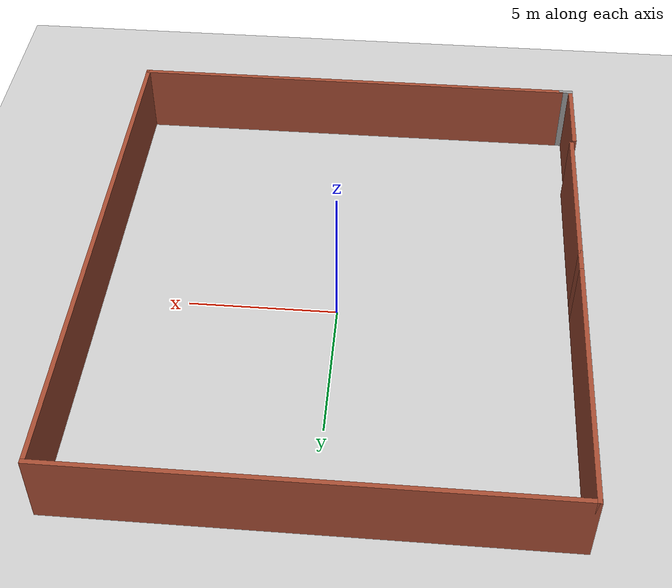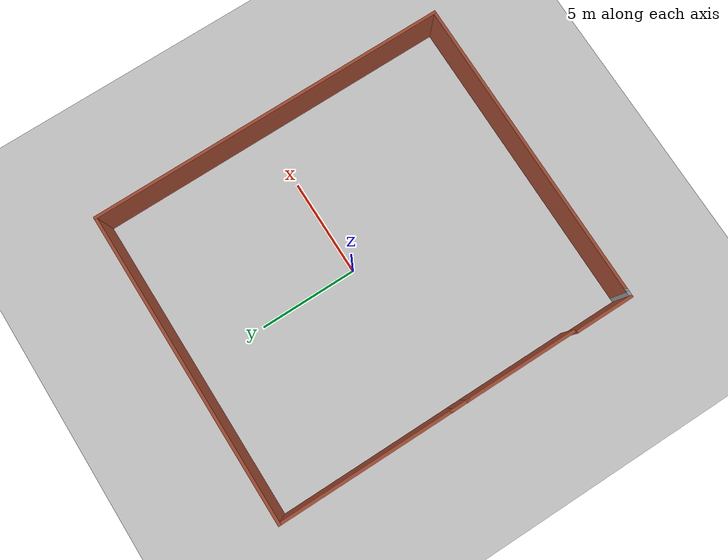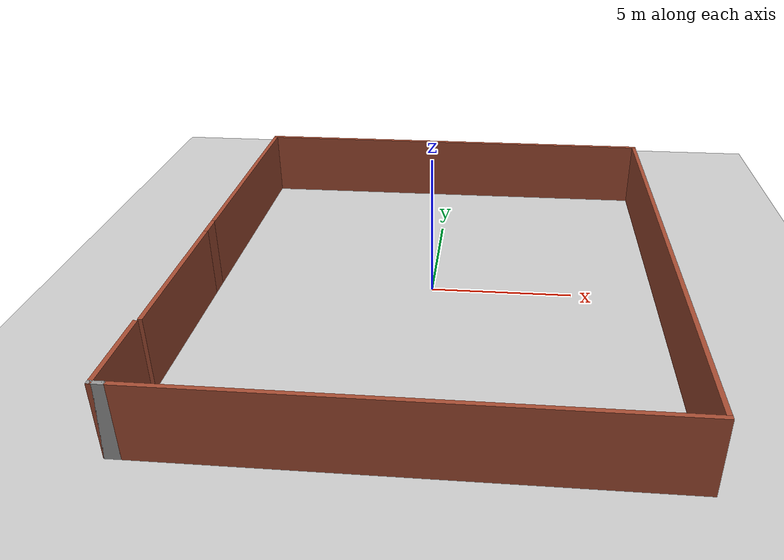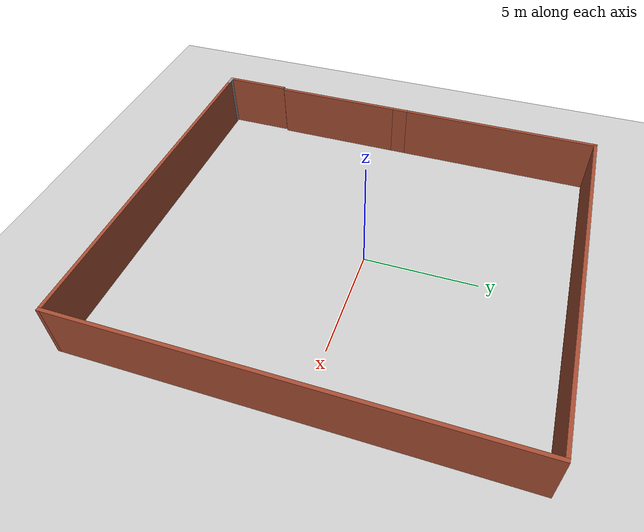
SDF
<sdf version="1.7">
 <world name="default">
  <light name="sun" type="directional">
   <pose>0 0 10 0 -0 0</pose>
   <diffuse>0.8 0.8 0.8 1</diffuse>
   <specular>0.2 0.2 0.2 1</specular>
   <attenuation>
    <range>1000</range>
    <constant>0.9</constant>
    <linear>0.01</linear>
    <quadratic>0.001</quadratic>
   </attenuation>
   <direction>-0.5 0.1 -0.9</direction>
   <spot><inner_angle>0</inner_angle><outer_angle>0</outer_angle><falloff>0</falloff></spot>
  </light>
  <model name="ground_plane">
   <static>1</static>
   <link name="link">
    <collision name="collision">
     <geometry><plane><normal>0 0 1</normal><size>100 100</size></plane></geometry>
     <surface>
      <contact><collide_bitmask>65535</collide_bitmask></contact>
      <friction><ode><mu>100</mu><mu2>50</mu2></ode></friction>
     </surface>
    </collision>
    <visual name="visual">
     <cast_shadows>0</cast_shadows>
     <geometry><plane><normal>0 0 1</normal><size>100 100</size></plane></geometry>
     <material>
      <script><uri>file://media/materials/scripts/gazebo.material</uri><name>Gazebo/Grey</name></script>
     </material>
    </visual>
   </link>
  </model>
  <gravity>0 0 -9.8</gravity>
  <magnetic_field>6e-06 2.3e-05 -4.2e-05</magnetic_field>
  <atmosphere type="adiabatic"/>
  <physics type="ode">
   <max_step_size>0.001</max_step_size>
   <real_time_factor>1</real_time_factor>
   <real_time_update_rate>1000</real_time_update_rate>
  </physics>
  <scene><ambient>0.4 0.4 0.4 1</ambient><background>0.7 0.7 0.7 1</background><shadows>1</shadows></scene>
  <spherical_coordinates>
   <surface_model>EARTH_WGS84</surface_model>
   <latitude_deg>0</latitude_deg>
   <longitude_deg>0</longitude_deg>
   <elevation>0</elevation>
   <heading_deg>0</heading_deg>
  </spherical_coordinates>
  <model name="world">
   <pose>0.040246 -0.489981 0 0 -0 0</pose>
   <link name="Wall_10">
    <collision name="Wall_10_Collision">
     <geometry><box><size>18.5 0.15 2.5</size></box></geometry>
     <pose>0 0 1.25 0 -0 0</pose>
    </collision>
    <visual name="Wall_10_Visual">
     <pose>0 0 1.25 0 -0 0</pose>
     <geometry><box><size>18.5 0.15 2.5</size></box></geometry>
     <material>
      <script><uri>file://media/materials/scripts/gazebo.material</uri><name>Gazebo/Bricks</name></script>
      <ambient>1 1 1 1</ambient>
     </material>
     <meta><layer>0</layer></meta>
    </visual>
    <pose>7.975 -0 0 0 -0 -1.5708</pose>
   </link>
   <link name="Wall_11">
    <collision name="Wall_11_Collision">
     <geometry><box><size>15.75 0.15 2.5</size></box></geometry>
     <pose>0 0 1.25 0 -0 0</pose>
    </collision>
    <visual name="Wall_11_Visual">
     <pose>0 0 1.25 0 -0 0</pose>
     <geometry><box><size>15.75 0.15 2.5</size></box></geometry>
     <material>
      <script><uri>file://media/materials/scripts/gazebo.material</uri><name>Gazebo/Bricks</name></script>
      <ambient>1 1 1 1</ambient>
     </material>
     <meta><layer>0</layer></meta>
    </visual>
    <pose>0.175 -9.175 0 0 -0 3.14159</pose>
   </link>
   <link name="Wall_12">
    <collision name="Wall_12_Collision">
     <geometry><box><size>0.15 0.15 2.5</size></box></geometry>
     <pose>0 0 1.25 0 -0 0</pose>
    </collision>
    <visual name="Wall_12_Visual">
     <pose>0 0 1.25 0 -0 0</pose>
     <geometry><box><size>0.15 0.15 2.5</size></box></geometry>
     <material>
      <script><uri>file://media/materials/scripts/gazebo.material</uri><name>Gazebo/Grey</name></script>
      <ambient>1 1 1 1</ambient>
     </material>
     <meta><layer>0</layer></meta>
    </visual>
    <pose>-7.625 -9.175 0 0 -0 0</pose>
   </link>
   <link name="Wall_13">
    <collision name="Wall_13_Collision">
     <geometry><box><size>0.15 0.15 2.5</size></box></geometry>
     <pose>0 0 1.25 0 -0 0</pose>
    </collision>
    <visual name="Wall_13_Visual">
     <pose>0 0 1.25 0 -0 0</pose>
     <geometry><box><size>0.15 0.15 2.5</size></box></geometry>
     <material>
      <script><uri>file://media/materials/scripts/gazebo.material</uri><name>Gazebo/Grey</name></script>
      <ambient>1 1 1 1</ambient>
     </material>
     <meta><layer>0</layer></meta>
    </visual>
    <pose>-7.625 -9.175 0 0 -0 0</pose>
   </link>
   <link name="Wall_14">
    <collision name="Wall_14_Collision">
     <geometry><box><size>0.5 0.15 2.5</size></box></geometry>
     <pose>0 0 1.25 0 -0 0</pose>
    </collision>
    <visual name="Wall_14_Visual">
     <pose>0 0 1.25 0 -0 0</pose>
     <geometry><box><size>0.5 0.15 2.5</size></box></geometry>
     <material>
      <script><uri>file://media/materials/scripts/gazebo.material</uri><name>Gazebo/Grey</name></script>
      <ambient>1 1 1 1</ambient>
     </material>
     <meta><layer>0</layer></meta>
    </visual>
    <pose>-7.8 -9.175 0 0 -0 3.14159</pose>
   </link>
   <link name="Wall_15">
    <collision name="Wall_15_Collision">
     <geometry><box><size>3 0.15 2.5</size></box></geometry>
     <pose>0 0 1.25 0 -0 0</pose>
    </collision>
    <visual name="Wall_15_Visual">
     <pose>0 0 1.25 0 -0 0</pose>
     <geometry><box><size>3 0.15 2.5</size></box></geometry>
     <material>
      <script><uri>file://media/materials/scripts/gazebo.material</uri><name>Gazebo/Bricks</name></script>
      <ambient>1 1 1 1</ambient>
     </material>
     <meta><layer>0</layer></meta>
    </visual>
    <pose>-7.975 -7.75 0 0 -0 1.5708</pose>
   </link>
   <link name="Wall_5">
    <collision name="Wall_5_Collision">
     <geometry><box><size>5.75 0.15 2.5</size></box></geometry>
     <pose>0 0 1.25 0 -0 0</pose>
    </collision>
    <visual name="Wall_5_Visual">
     <pose>0 0 1.25 0 -0 0</pose>
     <geometry><box><size>5.75 0.15 2.5</size></box></geometry>
     <material>
      <script><uri>file://media/materials/scripts/gazebo.material</uri><name>Gazebo/Bricks</name></script>
      <ambient>1 1 1 1</ambient>
     </material>
     <meta><layer>0</layer></meta>
    </visual>
    <pose>-7.875 -3.325 0 0 -0 -1.5708</pose>
   </link>
   <link name="Wall_7">
    <collision name="Wall_7_Collision">
     <geometry><box><size>1 0.15 2.5</size></box></geometry>
     <pose>0 0 1.25 0 -0 0</pose>
    </collision>
    <visual name="Wall_7_Visual">
     <pose>0 0 1.25 0 -0 0</pose>
     <geometry><box><size>1 0.15 2.5</size></box></geometry>
     <material>
      <script><uri>file://media/materials/scripts/gazebo.material</uri><name>Gazebo/Bricks</name></script>
      <ambient>1 1 1 1</ambient>
     </material>
     <meta><layer>0</layer></meta>
    </visual>
    <pose>-7.875 -0.1 0 0 -0 1.5708</pose>
   </link>
   <link name="Wall_8">
    <collision name="Wall_8_Collision">
     <geometry><box><size>9 0.15 2.5</size></box></geometry>
     <pose>0 0 1.25 0 -0 0</pose>
    </collision>
    <visual name="Wall_8_Visual">
     <pose>0 0 1.25 0 -0 0</pose>
     <geometry><box><size>9 0.15 2.5</size></box></geometry>
     <material>
      <script><uri>file://media/materials/scripts/gazebo.material</uri><name>Gazebo/Bricks</name></script>
      <ambient>1 1 1 1</ambient>
     </material>
     <meta><layer>0</layer></meta>
    </visual>
    <pose>-7.875 4.75 0 0 -0 1.5708</pose>
   </link>
   <link name="Wall_9">
    <collision name="Wall_9_Collision">
     <geometry><box><size>16 0.15 2.5</size></box></geometry>
     <pose>0 0 1.25 0 -0 0</pose>
    </collision>
    <visual name="Wall_9_Visual">
     <pose>0 0 1.25 0 -0 0</pose>
     <geometry><box><size>16 0.15 2.5</size></box></geometry>
     <material>
      <script><uri>file://media/materials/scripts/gazebo.material</uri><name>Gazebo/Bricks</name></script>
      <ambient>1 1 1 1</ambient>
     </material>
     <meta><layer>0</layer></meta>
    </visual>
    <pose>0.05 9.175 0 0 -0 0</pose>
   </link>
   <static>1</static>
  </model>
 </world>
</sdf>
